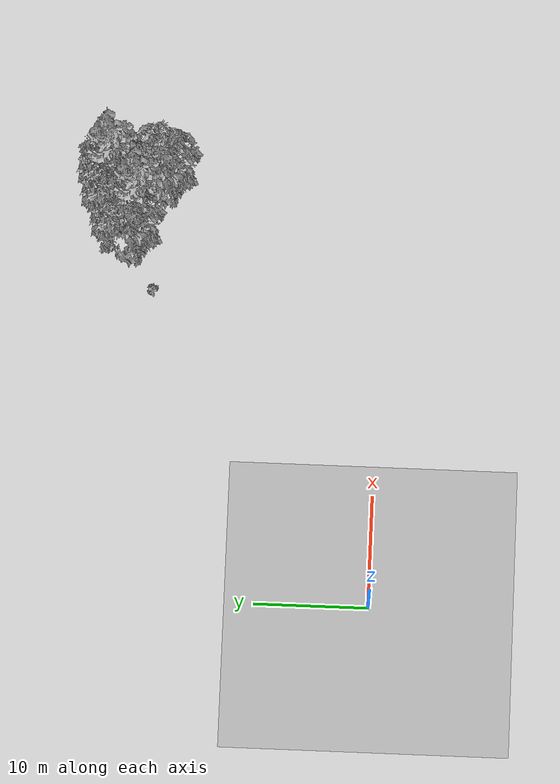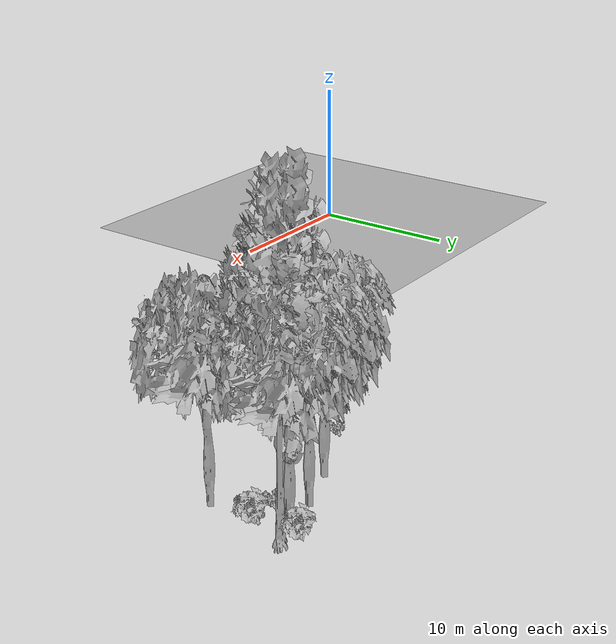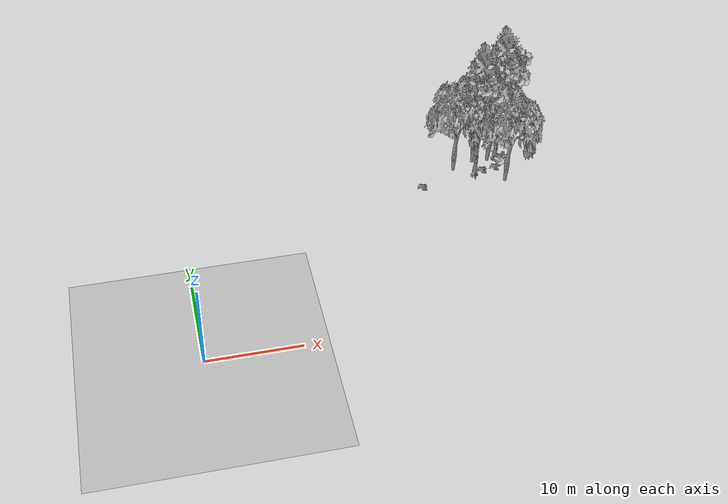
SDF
<sdf version="1.7">
 <world name="default">
  <model name="ground_plane">
   <static>1</static>
   <link name="link">
    <collision name="collision">
     <pose>-50 0 0 0 -0 0</pose>
     <geometry><plane><normal>0 0 1</normal><size>80 80</size></plane></geometry>
     <surface><contact><ode><min_depth>0.01</min_depth><max_vel>0</max_vel></ode></contact></surface>
    </collision>
    <visual name="grass">
     <cast_shadows>0</cast_shadows>
     <geometry>
      <mesh>
       <scale>0.46714285714285714 0.46714285714285714 0.1</scale>
       <uri>file://grass_plane/meshes/grass_plane.dae</uri>
      </mesh>
     </geometry>
    </visual>
   </link>
  </model>
  <model name="Tree 226">
   <static>1</static>
   <pose>36.6491170348647 23.76612710994582 0 1.57079 -0 0</pose>
   <link name="link">
    <collision name="collision">
     <geometry><mesh><scale>3.5 5 3.5</scale><uri>model://tree_2/meshes/tree_2.obj</uri></mesh></geometry>
    </collision>
    <visual name="visual">
     <geometry><mesh><scale>3.5 5 3.5</scale><uri>model://tree_2/meshes/tree_2.obj</uri></mesh></geometry>
    </visual>
   </link>
  </model>
  <model name="Tree 265">
   <static>1</static>
   <pose>34.580014331191464 23.387046756713055 0 1.57079 -0 0</pose>
   <link name="link">
    <collision name="collision">
     <geometry><mesh><scale>3.5 5 3.5</scale><uri>model://tree_2/meshes/tree_2.obj</uri></mesh></geometry>
    </collision>
    <visual name="visual">
     <geometry><mesh><scale>3.5 5 3.5</scale><uri>model://tree_2/meshes/tree_2.obj</uri></mesh></geometry>
    </visual>
   </link>
  </model>
  <model name="Tree 271">
   <static>1</static>
   <pose>37.33439434691945 19.498306386314667 0 1.57079 -0 0</pose>
   <link name="link">
    <collision name="collision">
     <geometry><mesh><scale>3.5 5 3.5</scale><uri>model://tree_2/meshes/tree_2.obj</uri></mesh></geometry>
    </collision>
    <visual name="visual">
     <geometry><mesh><scale>3.5 5 3.5</scale><uri>model://tree_2/meshes/tree_2.obj</uri></mesh></geometry>
    </visual>
   </link>
  </model>
  <model name="Tree 280">
   <static>1</static>
   <pose>31.983303534247128 22.4111001554179 0 1.57079 -0 0</pose>
   <link name="link">
    <collision name="collision">
     <geometry><mesh><scale>3.5 5 3.5</scale><uri>model://tree_2/meshes/tree_2.obj</uri></mesh></geometry>
    </collision>
    <visual name="visual">
     <geometry><mesh><scale>3.5 5 3.5</scale><uri>model://tree_2/meshes/tree_2.obj</uri></mesh></geometry>
    </visual>
   </link>
  </model>
  <model name="Tree 368">
   <static>1</static>
   <pose>36.39266421007504 23.300765559779848 0 1.57079 -0 0</pose>
   <link name="link">
    <collision name="collision">
     <geometry><mesh><scale>3.5 5 3.5</scale><uri>model://tree_2/meshes/tree_2.obj</uri></mesh></geometry>
    </collision>
    <visual name="visual">
     <geometry><mesh><scale>3.5 5 3.5</scale><uri>model://tree_2/meshes/tree_2.obj</uri></mesh></geometry>
    </visual>
   </link>
  </model>
  <model name="Tree 531">
   <static>1</static>
   <pose>37.63220734945125 23.92387396308213 0 1.57079 -0 0</pose>
   <link name="link">
    <collision name="collision">
     <geometry><mesh><scale>3.5 5 3.5</scale><uri>model://tree_9/meshes/tree_9.obj</uri></mesh></geometry>
    </collision>
    <visual name="visual">
     <geometry><mesh><scale>3.5 5 3.5</scale><uri>model://tree_9/meshes/tree_9.obj</uri></mesh></geometry>
    </visual>
   </link>
  </model>
  <model name="Tree 639">
   <static>1</static>
   <pose>34.40673592378694 21.495568698440593 0 1.57079 -0 0</pose>
   <link name="link">
    <collision name="collision">
     <geometry><mesh><scale>3.5 5 3.5</scale><uri>model://tree_9/meshes/tree_9.obj</uri></mesh></geometry>
    </collision>
    <visual name="visual">
     <geometry><mesh><scale>3.5 5 3.5</scale><uri>model://tree_9/meshes/tree_9.obj</uri></mesh></geometry>
    </visual>
   </link>
  </model>
  <model name="Bush 0">
   <static>1</static>
   <pose>27.747484510741785 20.065610849631298 0 1.57079 -0 0</pose>
   <link name="link">
    <collision name="collision">
     <geometry><mesh><scale>2 2 2</scale><uri>model://bush_2/meshes/bush_2.obj</uri></mesh></geometry>
     <surface><contact><collide_without_contact>false</collide_without_contact></contact></surface>
    </collision>
    <visual name="visual">
     <geometry><mesh><scale>2 2 2</scale><uri>model://bush_2/meshes/bush_2.obj</uri></mesh></geometry>
    </visual>
   </link>
  </model>
  <model name="Bush 138">
   <static>1</static>
   <pose>35.319541243569844 21.555102703011563 0 1.57079 -0 0</pose>
   <link name="link">
    <collision name="collision">
     <geometry><mesh><scale>2 2 2</scale><uri>model://bush_2/meshes/bush_2.obj</uri></mesh></geometry>
     <surface><contact><collide_without_contact>false</collide_without_contact></contact></surface>
    </collision>
    <visual name="visual">
     <geometry><mesh><scale>2 2 2</scale><uri>model://bush_2/meshes/bush_2.obj</uri></mesh></geometry>
    </visual>
   </link>
  </model>
  <model name="Bush 471">
   <static>1</static>
   <pose>37.57081959197497 21.920369581730903 0 1.57079 -0 0</pose>
   <link name="link">
    <collision name="collision">
     <geometry><mesh><scale>2 2 2</scale><uri>model://bush_1/meshes/bush_1.obj</uri></mesh></geometry>
     <surface><contact><collide_without_contact>false</collide_without_contact></contact></surface>
    </collision>
    <visual name="visual">
     <geometry><mesh><scale>2 2 2</scale><uri>model://bush_1/meshes/bush_1.obj</uri></mesh></geometry>
    </visual>
   </link>
  </model>
  <model name="Bush 524">
   <static>1</static>
   <pose>36.87523465394884 21.777937341061318 0 1.57079 -0 0</pose>
   <link name="link">
    <collision name="collision">
     <geometry><mesh><scale>2 2 2</scale><uri>model://bush_2/meshes/bush_2.obj</uri></mesh></geometry>
     <surface><contact><collide_without_contact>false</collide_without_contact></contact></surface>
    </collision>
    <visual name="visual">
     <geometry><mesh><scale>2 2 2</scale><uri>model://bush_2/meshes/bush_2.obj</uri></mesh></geometry>
    </visual>
   </link>
  </model>
  <model name="Bush 631">
   <static>1</static>
   <pose>37.37033914516857 24.556635062495445 0 1.57079 -0 0</pose>
   <link name="link">
    <collision name="collision">
     <geometry><mesh><scale>2 2 2</scale><uri>model://bush_1/meshes/bush_1.obj</uri></mesh></geometry>
     <surface><contact><collide_without_contact>false</collide_without_contact></contact></surface>
    </collision>
    <visual name="visual">
     <geometry><mesh><scale>2 2 2</scale><uri>model://bush_1/meshes/bush_1.obj</uri></mesh></geometry>
    </visual>
   </link>
  </model>
 </world>
</sdf>
